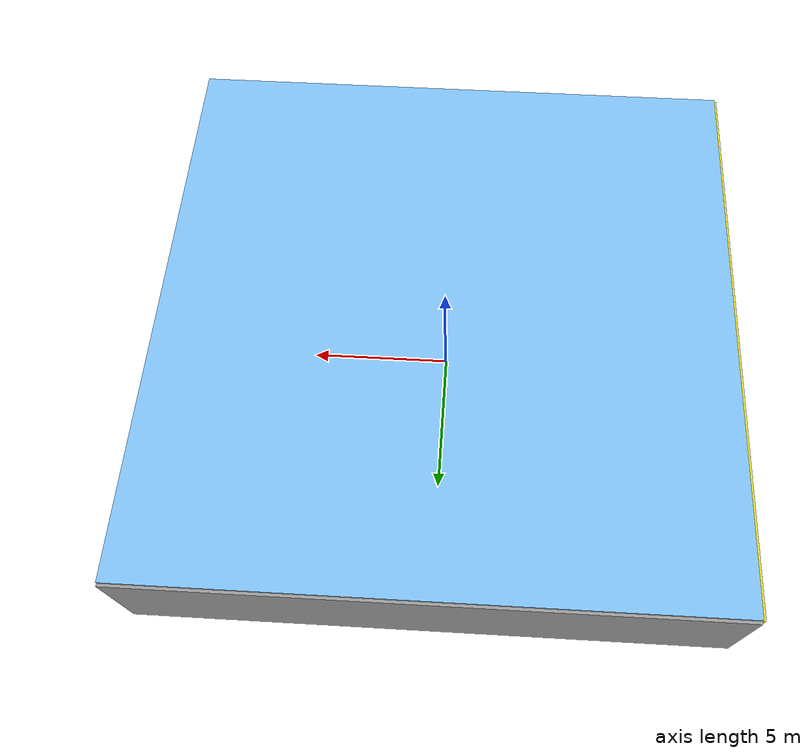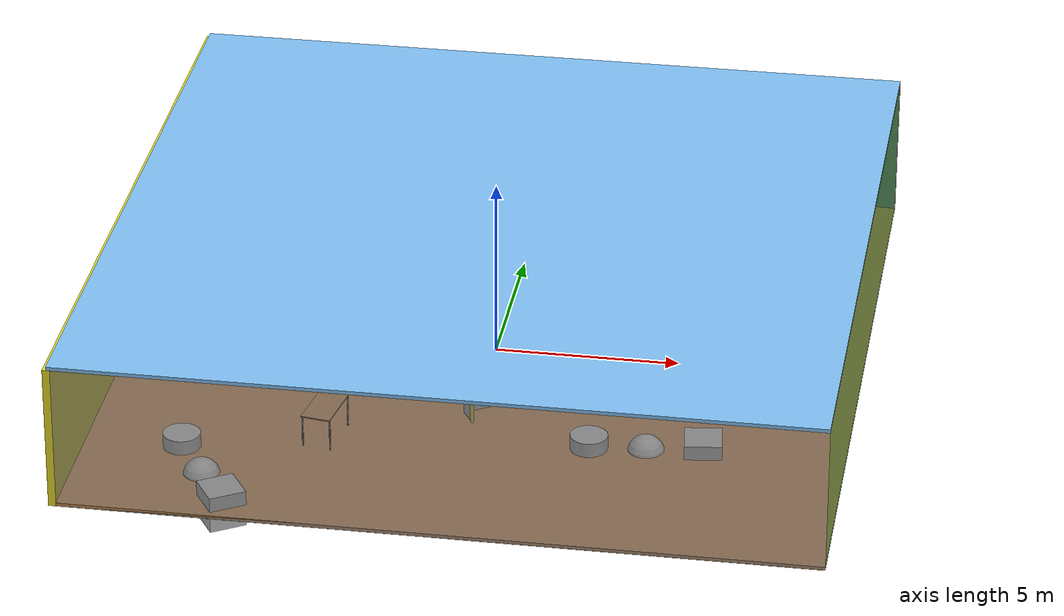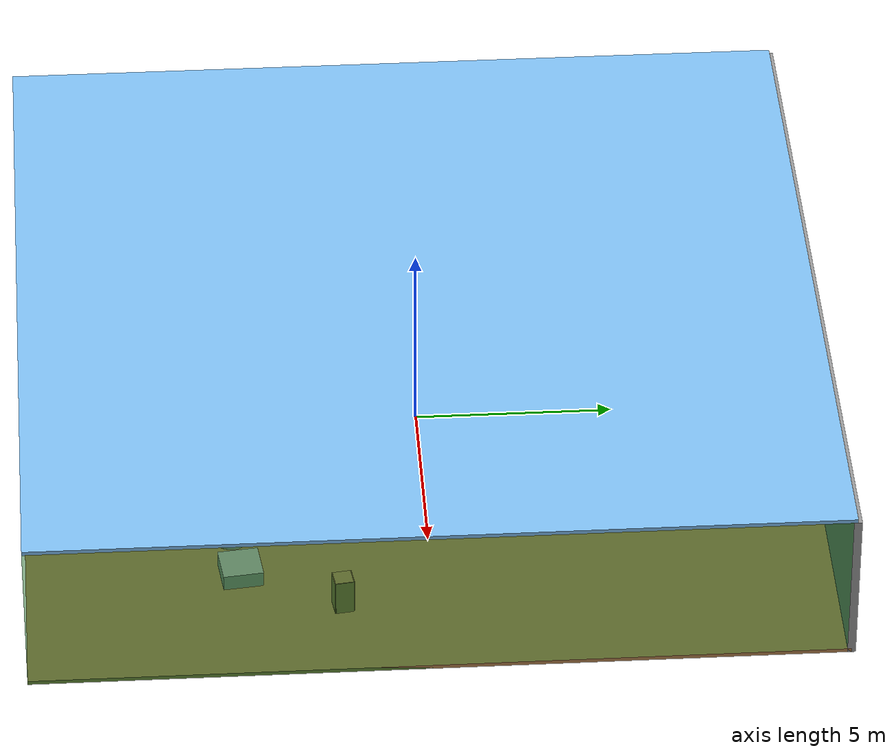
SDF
<sdf version="1.4">
 <world name="default">
  <physics type="ode">
   <max_step_size>0.001</max_step_size>
   <real_time_factor>1</real_time_factor>
   <real_time_update_rate>1000</real_time_update_rate>
   <gravity>0 0 -9.8</gravity>
  </physics>
  <scene><ambient>0.4 0.4 0.4 1</ambient><background>0.7 0.7 0.7 1</background><shadows>1</shadows></scene>
  <model name="Surrounding">
   <static>1</static>
   <link name="Ceiling">
    <collision name="Ceiling_Collision"><geometry><box><size>20 20 0.1</size></box></geometry></collision>
    <visual name="Ceiling_Visual">
     <geometry><box><size>20 20 0.1</size></box></geometry>
     <material>
      <script><uri>file://media/materials/scripts/gazebo.material</uri><name>Gazebo/SkyBlue</name></script>
     </material>
    </visual>
    <pose>0 0 4.05 0 0 0</pose>
   </link>
   <link name="Wall_South">
    <collision name="Wall_South_Collision">
     <geometry><box><size>20 0 4</size></box></geometry>
     <pose>0 0 2 0 -0 0</pose>
    </collision>
    <visual name="Wall_South_Visual">
     <pose>0 0 2 0 -0 0</pose>
     <geometry><box><size>20 0 4</size></box></geometry>
     <material>
      <script><uri>file://media/materials/scripts/gazebo.material</uri><name>Gazebo/GreyTransparent</name></script>
     </material>
    </visual>
    <velocity_decay><linear>0</linear><angular>0</angular></velocity_decay>
    <pose>0 -10 0 0 -0 0</pose>
   </link>
   <link name="Wall_East">
    <collision name="Wall_21_Collision">
     <geometry><box><size>20 0 4</size></box></geometry>
     <pose>0 0 2 0 -0 0</pose>
    </collision>
    <visual name="Wall_21_Visual">
     <pose>0 0 2 0 -0 0</pose>
     <geometry><box><size>20 0 4</size></box></geometry>
     <material>
      <script><uri>file://media/materials/scripts/gazebo.material</uri><name>Gazebo/GreenTransparent</name></script>
     </material>
    </visual>
    <velocity_decay><linear>0</linear><angular>0</angular></velocity_decay>
    <pose>10 0 0 0 -0 1.5708</pose>
   </link>
   <link name="Wall_North">
    <collision name="Wall_22_Collision">
     <geometry><box><size>20 0.2 4</size></box></geometry>
     <pose>0 0 2 0 -0 0</pose>
    </collision>
    <visual name="Wall_22_Visual">
     <pose>0 0 2 0 -0 0</pose>
     <geometry><box><size>20 0.2 4</size></box></geometry>
     <material>
      <script><uri>file://media/materials/scripts/gazebo.material</uri><name>Gazebo/GreyGradientSky</name></script>
     </material>
    </visual>
    <velocity_decay><linear>0</linear><angular>0</angular></velocity_decay>
    <pose>0 10 0 0 -0 0</pose>
   </link>
   <link name="Wall_West">
    <collision name="Wall_23_Collision">
     <geometry><box><size>20 0.2 4</size></box></geometry>
     <pose>0 0 2 0 -0 0</pose>
    </collision>
    <visual name="Wall_23_Visual">
     <pose>0 0 2 0 -0 0</pose>
     <geometry><box><size>20 0.2 4</size></box></geometry>
     <material>
      <script><uri>file://media/materials/scripts/gazebo.material</uri><name>Gazebo/Yellow</name></script>
     </material>
    </visual>
    <velocity_decay><linear>0</linear><angular>0</angular></velocity_decay>
    <pose>-10 0 0 0 0 -1.5708</pose>
   </link>
   <link name="Ground_link">
    <collision name="collision">
     <pose>0 0 .05 0 -0 0</pose>
     <geometry><box><size>20 20 0.1</size></box></geometry>
    </collision>
    <visual name="visual">
     <pose>0 0 .05 0 -0 0</pose>
     <geometry><box><size>20 20 0.1</size></box></geometry>
     <material>
      <script><uri>file://media/materials/scripts/gazebo.material</uri><name>Gazebo/WoodPallet</name></script>
     </material>
    </visual>
   </link>
   <static>1</static>
  </model>
  <spherical_coordinates>
   <surface_model>EARTH_WGS84</surface_model>
   <latitude_deg>0</latitude_deg>
   <longitude_deg>0</longitude_deg>
   <elevation>0</elevation>
   <heading_deg>0</heading_deg>
  </spherical_coordinates>
  <light name="lightball_0" type="diffuse">
   <diffuse>0.8 0.8 0.8 1</diffuse>
   <specular>0.2 0.2 0.2 1</specular>
   <attenuation>
    <range>100</range>
    <constant>0.7</constant>
    <linear>0.01</linear>
    <quadratic>0.001</quadratic>
   </attenuation>
   <direction>-0.5 0.1 -0.9</direction>
   <pose>4.22333842318 -2.43737077038 3.59929328862 0 0 0</pose>
  </light>
  <light name="lightball_1" type="diffuse">
   <diffuse>0.8 0.8 0.8 1</diffuse>
   <specular>0.2 0.2 0.2 1</specular>
   <attenuation>
    <range>100</range>
    <constant>0.7</constant>
    <linear>0.01</linear>
    <quadratic>0.001</quadratic>
   </attenuation>
   <direction>-0.5 0.1 -0.9</direction>
   <pose>5.3640856309 -7.14246982635 1.51632977504 0 0 0</pose>
  </light>
  <light name="lightball_2" type="diffuse">
   <diffuse>0.8 0.8 0.8 1</diffuse>
   <specular>0.2 0.2 0.2 1</specular>
   <attenuation>
    <range>100</range>
    <constant>0.7</constant>
    <linear>0.01</linear>
    <quadratic>0.001</quadratic>
   </attenuation>
   <direction>-0.5 0.1 -0.9</direction>
   <pose>5.27535445976 0.951076508007 2.15430806122 0 0 0</pose>
  </light>
  <light name="lightball_3" type="diffuse">
   <diffuse>0.8 0.8 0.8 1</diffuse>
   <specular>0.2 0.2 0.2 1</specular>
   <attenuation>
    <range>100</range>
    <constant>0.7</constant>
    <linear>0.01</linear>
    <quadratic>0.001</quadratic>
   </attenuation>
   <direction>-0.5 0.1 -0.9</direction>
   <pose>-8.4051878461 -8.18845703391 1.00628232158 0 0 0</pose>
  </light>
  <light name="lightball_4" type="diffuse">
   <diffuse>0.8 0.8 0.8 1</diffuse>
   <specular>0.2 0.2 0.2 1</specular>
   <attenuation>
    <range>100</range>
    <constant>0.7</constant>
    <linear>0.01</linear>
    <quadratic>0.001</quadratic>
   </attenuation>
   <direction>-0.5 0.1 -0.9</direction>
   <pose>1.96542319579 4.92228056132 2.42166544539 0 0 0</pose>
  </light>
  <light name="lightball_5" type="diffuse">
   <diffuse>0.8 0.8 0.8 1</diffuse>
   <specular>0.2 0.2 0.2 1</specular>
   <attenuation>
    <range>100</range>
    <constant>0.7</constant>
    <linear>0.01</linear>
    <quadratic>0.001</quadratic>
   </attenuation>
   <direction>-0.5 0.1 -0.9</direction>
   <pose>8.69932883428 2.49747677846 1.62826685216 0 0 0</pose>
  </light>
  <light name="lightball_6" type="diffuse">
   <diffuse>0.8 0.8 0.8 1</diffuse>
   <specular>0.2 0.2 0.2 1</specular>
   <attenuation>
    <range>100</range>
    <constant>0.7</constant>
    <linear>0.01</linear>
    <quadratic>0.001</quadratic>
   </attenuation>
   <direction>-0.5 0.1 -0.9</direction>
   <pose>0.565351758716 -2.238892032 2.48196880413 0 0 0</pose>
  </light>
  <light name="lightball_7" type="diffuse">
   <diffuse>0.8 0.8 0.8 1</diffuse>
   <specular>0.2 0.2 0.2 1</specular>
   <attenuation>
    <range>100</range>
    <constant>0.7</constant>
    <linear>0.01</linear>
    <quadratic>0.001</quadratic>
   </attenuation>
   <direction>-0.5 0.1 -0.9</direction>
   <pose>-2.85380620847 -4.44462002976 0.521518556973 0 0 0</pose>
  </light>
  <light name="lightball_8" type="diffuse">
   <diffuse>0.8 0.8 0.8 1</diffuse>
   <specular>0.2 0.2 0.2 1</specular>
   <attenuation>
    <range>100</range>
    <constant>0.7</constant>
    <linear>0.01</linear>
    <quadratic>0.001</quadratic>
   </attenuation>
   <direction>-0.5 0.1 -0.9</direction>
   <pose>6.41142671573 1.88322751206 1.42361361308 0 0 0</pose>
  </light>
  <include>
   <uri>model://textured_shapes</uri>
   <pose>-6.51634452691 -7.89020763565 0 0 0 0.558720914376</pose>
  </include>
  <include><uri>model://table</uri><pose>-3.6919722667 -5.47966912658 0 0 0 1.40493913383</pose></include>
  <include>
   <uri>model://textured_shapes</uri>
   <pose>-0.957424089825 0.983478082494 0 0 0 2.59199992901</pose>
  </include>
  <include>
   <uri>model://robocup_3Dsim_goal</uri>
   <pose>0.903841191314 -3.62100338478 0 0 0 2.12575117303</pose>
  </include>
  <include>
   <uri>model://textured_shapes</uri>
   <pose>4.7555879544 -4.8734161543 0 0 0 1.68540704057</pose>
  </include>
  <include><uri>model://cabinet</uri><pose>7.61497642998 -2.24378889563 0 0 0 0.136123701393</pose></include>
 </world>
</sdf>

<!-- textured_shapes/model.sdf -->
<sdf version="1.6">
  <model name="textured_shapes">
    <pose>0 0 0.5 0 0 0</pose>
    <link name="box">
      <pose>0 -1.5 0 0 0 0</pose>
      <collision name="collision">
        <geometry>
          <box>
            <size>1 1 1</size>
          </box>
        </geometry>
      </collision>
      <visual name="visual">
        <geometry>
          <box>
            <size>1 1 1</size>
          </box>
        </geometry>
        <material>
          <script>
            <uri>model://../model_source/models/textured_shapes/materials/scripts</uri>
            <uri>model://../model_source/models/textured_shapes/materials/textures</uri>
            <name>TexturedShape/Squares</name>
          </script>
        </material>
      </visual>
    </link>
    <link name="sphere">
      <collision name="collision">
        <geometry>
          <sphere>
            <radius>0.5</radius>
          </sphere>
        </geometry>
      </collision>
      <visual name="visual">
        <geometry>
          <sphere>
            <radius>0.5</radius>
          </sphere>
        </geometry>
        <material>
          <script>
            <uri>model://../model_source/models/textured_shapes/materials/scripts</uri>
            <uri>model://../model_source/models/textured_shapes/materials/textures</uri>
            <name>TexturedShape/Squares</name>
          </script>
        </material>
      </visual>
    </link>
    <link name="cylinder">
      <pose>0 1.5 0 0 0 0</pose>
      <collision name="collision">
        <geometry>
          <cylinder>
            <radius>0.5</radius>
            <length>1</length>
          </cylinder>
        </geometry>
      </collision>
      <visual name="visual">
        <geometry>
          <cylinder>
            <radius>0.5</radius>
            <length>1</length>
          </cylinder>
        </geometry>
        <material>
          <script>
            <uri>model://../model_source/models/textured_shapes/materials/scripts</uri>
            <uri>model://../model_source/models/textured_shapes/materials/textures</uri>
            <name>TexturedShape/Squares</name>
          </script>
        </material>
      </visual>
    </link>
  </model>
</sdf>

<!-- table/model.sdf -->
<sdf version="1.5">
  <model name="table">
    <static>true</static>
    <link name="link">
      <collision name="surface">
        <pose>0 0 1.0 0 0 0</pose>
        <geometry>
          <box>
            <size>1.5 0.8 0.03</size>
          </box>
        </geometry>
        <surface>
          <friction>
            <ode>
              <mu>0.6</mu>
              <mu2>0.6</mu2>
            </ode>
          </friction>
        </surface>
      </collision>
      <visual name="visual1">
        <pose>0 0 1.0 0 0 0</pose>
        <geometry>
          <box>
            <size>1.5 0.8 0.03</size>
          </box>
        </geometry>
        <material>
          <script>
            <uri>model://media/materials/scripts/gazebo.material</uri>
            <name>Gazebo/Wood</name>
          </script>
        </material>
      </visual>
      <collision name="front_left_leg">
        <pose>0.68 0.38 0.5 0 0 0</pose>
        <geometry>
          <cylinder>
            <radius>0.02</radius>
            <length>1.0</length>
          </cylinder>
        </geometry>
      </collision>
      <visual name="front_left_leg">
        <pose>0.68 0.38 0.5 0 0 0</pose>
        <geometry>
          <cylinder>
            <radius>0.02</radius>
            <length>1.0</length>
          </cylinder>
        </geometry>
        <material>
          <script>
            <uri>model://media/materials/scripts/gazebo.material</uri>
            <name>Gazebo/Grey</name>
          </script>
        </material>
      </visual>
      <collision name="front_right_leg">
        <pose>0.68 -0.38 0.5 0 0 0</pose>
        <geometry>
          <cylinder>
            <radius>0.02</radius>
            <length>1.0</length>
          </cylinder>
        </geometry>
      </collision>
      <visual name="front_right_leg">
        <pose>0.68 -0.38 0.5 0 0 0</pose>
        <geometry>
          <cylinder>
            <radius>0.02</radius>
            <length>1.0</length>
          </cylinder>
        </geometry>
        <material>
          <script>
            <uri>model://media/materials/scripts/gazebo.material</uri>
            <name>Gazebo/Grey</name>
          </script>
        </material>
      </visual>
      <collision name="back_right_leg">
        <pose>-0.68 -0.38 0.5 0 0 0</pose>
        <geometry>
          <cylinder>
            <radius>0.02</radius>
            <length>1.0</length>
          </cylinder>
        </geometry>
      </collision>
      <visual name="back_right_leg">
        <pose>-0.68 -0.38 0.5 0 0 0</pose>
        <geometry>
          <cylinder>
            <radius>0.02</radius>
            <length>1.0</length>
          </cylinder>
        </geometry>
        <material>
          <script>
            <uri>model://media/materials/scripts/gazebo.material</uri>
            <name>Gazebo/Grey</name>
          </script>
        </material>
      </visual>
      <collision name="back_left_leg">
        <pose>-0.68 0.38 0.5 0 0 0</pose>
        <geometry>
          <cylinder>
            <radius>0.02</radius>
            <length>1.0</length>
          </cylinder>
        </geometry>
      </collision>
      <visual name="back_left_leg">
        <pose>-0.68 0.38 0.5 0 0 0</pose>
        <geometry>
          <cylinder>
            <radius>0.02</radius>
            <length>1.0</length>
          </cylinder>
        </geometry>
        <material>
          <script>
            <uri>model://media/materials/scripts/gazebo.material</uri>
            <name>Gazebo/Grey</name>
          </script>
        </material>
      </visual>
    </link>
  </model>
</sdf>

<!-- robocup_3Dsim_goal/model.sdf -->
<sdf version="1.5">
  <model name="robocup_3d_goal">
    <static>true</static>
    <link name="left_post">
      <pose>0 1.05 0.45 0 0 0</pose>
      <collision name="collision">
        <geometry>
          <cylinder>
            <radius>0.05</radius>
            <length>0.9</length>
          </cylinder>
        </geometry>
      </collision>
      <visual name="visual">
        <geometry>
          <cylinder>
            <radius>0.05</radius>
            <length>0.9</length>
          </cylinder>
        </geometry>
        <material>
          <script>
            <uri>file://media/materials/scripts/gazebo.material</uri>
            <name>Gazebo/ZincYellow</name>
          </script>
        </material>
      </visual>
    </link>
    <link name="left_support_horiz_lower">
      <pose>0.30 1.05 0.01 0 0 0</pose>
      <collision name="collision">
        <geometry>
          <box>
            <size>0.50 0.02 0.02</size>
          </box>
        </geometry>
      </collision>
      <visual name="visual">
        <geometry>
          <box>
            <size>0.50 0.02 0.02</size>
          </box>
        </geometry>
        <material>
          <script>
            <uri>file://media/materials/scripts/gazebo.material</uri>
            <name>Gazebo/White</name>
          </script>
        </material>
      </visual>
    </link>
    <link name="left_support_horiz_upper">
      <pose>0.30 1.05 0.79 0 0 0</pose>
      <collision name="collision">
        <geometry>
          <box>
            <size>0.50 0.02 0.02</size>
          </box>
        </geometry>
      </collision>
      <visual name="visual">
        <geometry>
          <box>
            <size>0.50 0.02 0.02</size>
          </box>
        </geometry>
        <material>
          <script>
            <uri>file://media/materials/scripts/gazebo.material</uri>
            <name>Gazebo/White</name>
          </script>
        </material>
      </visual>
    </link>
    <link name="left_support_vertical">
      <pose>0.56 1.05 0.4 0 1.5708 0</pose>
      <collision name="collision">
        <geometry>
          <box>
            <size>0.80 0.02 0.02</size>
          </box>
        </geometry>
      </collision>
      <visual name="visual">
        <geometry>
          <box>
            <size>0.80 0.02 0.02</size>
          </box>
        </geometry>
        <material>
          <script>
            <uri>file://media/materials/scripts/gazebo.material</uri>
            <name>Gazebo/White</name>
          </script>
        </material>
      </visual>
    </link>
    <link name="right_support_horiz_lower">
      <pose>0.30 -1.05 0.01 0 0 0</pose>
      <collision name="collision">
        <geometry>
          <box>
            <size>0.50 0.02 0.02</size>
          </box>
        </geometry>
      </collision>
      <visual name="visual">
        <geometry>
          <box>
            <size>0.50 0.02 0.02</size>
          </box>
        </geometry>
        <material>
          <script>
            <uri>file://media/materials/scripts/gazebo.material</uri>
            <name>Gazebo/White</name>
          </script>
        </material>
      </visual>
    </link>
    <link name="right_support_horiz_upper">
      <pose>0.30 -1.05 0.79 0 0 0</pose>
      <collision name="collision">
        <geometry>
          <box>
            <size>0.50 0.02 0.02</size>
          </box>
        </geometry>
      </collision>
      <visual name="visual">
        <geometry>
          <box>
            <size>0.50 0.02 0.02</size>
          </box>
        </geometry>
        <material>
          <script>
            <uri>file://media/materials/scripts/gazebo.material</uri>
            <name>Gazebo/White</name>
          </script>
        </material>
      </visual>
    </link>
    <link name="right_support_vertical">
      <pose>0.56 -1.05 0.4 0 1.5708 0</pose>
      <collision name="collision">
        <geometry>
          <box>
            <size>0.80 0.02 0.02</size>
          </box>
        </geometry>
      </collision>
      <visual name="visual">
        <geometry>
          <box>
            <size>0.80 0.02 0.02</size>
          </box>
        </geometry>
        <material>
          <script>
            <uri>file://media/materials/scripts/gazebo.material</uri>
            <name>Gazebo/White</name>
          </script>
        </material>
      </visual>
    </link>
    <link name="center_support_horiz_lower">
      <pose>0.56 0 0.01 0 1.5708 0</pose>
      <collision name="collision">
        <geometry>
          <box>
            <size>0.02 2.08 0.02</size>
          </box>
        </geometry>
      </collision>
      <visual name="visual">
        <geometry>
          <box>
            <size>0.02 2.08 0.02</size>
          </box>
        </geometry>
        <material>
          <script>
            <uri>file://media/materials/scripts/gazebo.material</uri>
            <name>Gazebo/White</name>
          </script>
        </material>
      </visual>
    </link>
    <link name="center_support_horiz_upper">
      <pose>0.56 0 0.79 0 1.5708 0</pose>
      <collision name="collision">
        <geometry>
          <box>
            <size>0.02 2.08 0.02</size>
          </box>
        </geometry>
      </collision>
      <visual name="visual">
        <geometry>
          <box>
            <size>0.02 2.08 0.02</size>
          </box>
        </geometry>
        <material>
          <script>
            <uri>file://media/materials/scripts/gazebo.material</uri>
            <name>Gazebo/White</name>
          </script>
        </material>
      </visual>
    </link>
    <link name="right_post">
      <pose>0 -1.05 0.45 0 0 0</pose>
      <collision name="collision">
        <geometry>
          <cylinder>
            <radius>0.05</radius>
            <length>0.9</length>
          </cylinder>
        </geometry>
      </collision>
      <visual name="visual">
        <geometry>
          <cylinder>
            <radius>0.05</radius>
            <length>0.9</length>
          </cylinder>
        </geometry>
        <material>
          <script>
            <uri>file://media/materials/scripts/gazebo.material</uri>
            <name>Gazebo/ZincYellow</name>
          </script>
        </material>
      </visual>
    </link>
    <link name="crossbar">
      <pose>0 0 0.85 1.57 1.57 0</pose>
      <collision name="collision">
        <geometry>
          <cylinder>
            <radius>0.05</radius>
            <length>2.0</length>
          </cylinder>
        </geometry>
      </collision>
      <visual name="visual">
        <geometry>
          <cylinder>
            <radius>0.05</radius>
            <length>2.0</length>
          </cylinder>
        </geometry>
        <material>
          <script>
            <uri>file://media/materials/scripts/gazebo.material</uri>
            <name>Gazebo/ZincYellow</name>
          </script>
        </material>
      </visual>
    </link>
    <link name="center_net">
      <pose>0.56 0 0.40 0 0 0</pose>
      <collision name="collision">
        <geometry>
          <box>
            <size>0.01 2.1 0.80</size>
          </box>
        </geometry>
      </collision>
      <visual name="visual">
        <geometry>
          <box>
            <size>0.01 2.1 0.80</size>
          </box>
        </geometry>
        <material>
          <script>
            <uri>model://../model_source/models/robocup09_spl_field/materials/scripts/</uri>
            <uri>model://../model_source/models/robocup09_spl_field/materials/textures/</uri>
            <name>RoboCup/Net</name>
          </script>
        </material>
      </visual>
    </link>
    <link name="left_net">
      <pose>0.30 1.05 0.40 0 0 0</pose>
      <collision name="collision">
        <geometry>
          <box>
            <size>0.50 0.01 0.76</size>
          </box>
        </geometry>
      </collision>
      <visual name="visual">
        <geometry>
          <box>
            <size>0.50 0.01 0.76</size>
          </box>
        </geometry>
        <material>
          <script>
            <uri>model://../model_source/models/robocup09_spl_field/materials/scripts/</uri>
            <uri>model://../model_source/models/robocup09_spl_field/materials/textures/</uri>
            <name>RoboCup/Net</name>
          </script>
        </material>
      </visual>
    </link>
    <link name="right_net">
      <pose>0.30 -1.05 0.40 0 0 0</pose>
      <collision name="collision">
        <geometry>
          <box>
            <size>0.50 0.01 0.76</size>
          </box>
        </geometry>
      </collision>
      <visual name="visual">
        <geometry>
          <box>
            <size>0.50 0.01 0.76</size>
          </box>
        </geometry>
        <material>
          <script>
            <uri>model://../model_source/models/robocup09_spl_field/materials/scripts/</uri>
            <uri>model://../model_source/models/robocup09_spl_field/materials/textures/</uri>
            <name>RoboCup/Net</name>
          </script>
        </material>
      </visual>
    </link>
  </model>
</sdf>

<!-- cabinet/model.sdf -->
<sdf version="1.5">
  <model name="cabinet">
    <static>true</static>
    <link name="cabinet_bottom_plate">
      <inertial>
        <pose>0 0 -1 0 0 0</pose>
        <inertia>
          <ixx>2.050000</ixx>
          <ixy>0</ixy>
          <ixz>0</ixz>
          <iyy>2.050000</iyy>
          <iyz>0</iyz>
          <izz>2.050000</izz>
        </inertia>
        <mass>25.000000</mass>
      </inertial>
      <collision name="cabinet_bottom_plate_geom">
        <pose>0 0 0.010000 0 0 0</pose>
        <geometry>
          <box>
            <size>0.450000 0.450000 0.020000</size>
          </box>
        </geometry>
      </collision>
      <visual name="cabinet_bottom_plate_geom_visual">
        <pose>0 0 0.010000 0 0 0</pose>
        <geometry>
          <box>
            <size>0.450000 0.450000 0.020000</size>
          </box>
        </geometry>
        <material>
          <script>
            <uri>model://media/materials/scripts/gazebo.material</uri>
            <name>Gazebo/Wood</name>
          </script>
        </material>
      </visual>
      <collision name="cabinet_bottom_plate_geom_cabinet_back_plate">
        <pose>0.235000 0 0.510000 0 0 0</pose>
        <geometry>
          <box>
            <size>0.020000 0.450000 1.020000</size>
          </box>
        </geometry>
      </collision>
      <visual name="cabinet_bottom_plate_geom_cabinet_back_plate_visual">
        <pose>0.235000 0 0.510000 0 0 0</pose>
        <geometry>
          <box>
            <size>0.020000 0.450000 1.020000</size>
          </box>
        </geometry>
        <material>
          <script>
            <uri>model://media/materials/scripts/gazebo.material</uri>
            <name>Gazebo/Wood</name>
          </script>
        </material>
      </visual>
      <collision name="cabinet_bottom_plate_geom_cabinet_left_plate">
        <pose>0 0.235000 0.510000 0 0 0</pose>
        <geometry>
          <box>
            <size>0.450000 0.020000 1.020000</size>
          </box>
        </geometry>
      </collision>
      <visual name="cabinet_bottom_plate_geom_cabinet_left_plate_visual">
        <pose>0 0.235000 0.510000 0 0 0</pose>
        <geometry>
          <box>
            <size>0.450000 0.020000 1.020000</size>
          </box>
        </geometry>
        <material>
          <script>
            <uri>model://media/materials/scripts/gazebo.material</uri>
            <name>Gazebo/Wood</name>
          </script>
        </material>
      </visual>
      <collision name="cabinet_bottom_plate_geom_cabinet_middle_plate">
        <pose>0 0 0.510000 0 0 0</pose>
        <geometry>
          <box>
            <size>0.450000 0.450000 0.020000</size>
          </box>
        </geometry>
      </collision>
      <visual name="cabinet_bottom_plate_geom_cabinet_middle_plate_visual">
        <pose>0 0 0.510000 0 0 0</pose>
        <geometry>
          <box>
            <size>0.450000 0.450000 0.020000</size>
          </box>
        </geometry>
        <material>
          <script>
            <uri>model://media/materials/scripts/gazebo.material</uri>
            <name>Gazebo/Wood</name>
          </script>
        </material>
      </visual>
      <collision name="cabinet_bottom_plate_geom_cabinet_right_plate">
        <pose>0 -0.235000 0.510000 0 0 0</pose>
        <geometry>
          <box>
            <size>0.450000 0.020000 1.020000</size>
          </box>
        </geometry>
      </collision>
      <visual name="cabinet_bottom_plate_geom_cabinet_right_plate_visual">
        <pose>0 -0.235000 0.510000 0 0 0</pose>
        <geometry>
          <box>
            <size>0.450000 0.020000 1.020000</size>
          </box>
        </geometry>
        <material>
          <script>
            <uri>model://media/materials/scripts/gazebo.material</uri>
            <name>Gazebo/Wood</name>
          </script>
        </material>
      </visual>
      <collision name="cabinet_bottom_plate_geom_cabinet_top_plate">
        <pose>0 0 1.010000 0 0 0</pose>
        <geometry>
          <box>
            <size>0.450000 0.450000 0.020000</size>
          </box>
        </geometry>
      </collision>
      <visual name="cabinet_bottom_plate_geom_cabinet_top_plate_visual">
        <pose>0 0 1.010000 0 0 0</pose>
        <geometry>
          <box>
            <size>0.450000 0.450000 0.020000</size>
          </box>
        </geometry>
        <material>
          <script>
            <uri>model://media/materials/scripts/gazebo.material</uri>
            <name>Gazebo/Wood</name>
          </script>
        </material>
      </visual>
    </link>
  </model>
</sdf>
